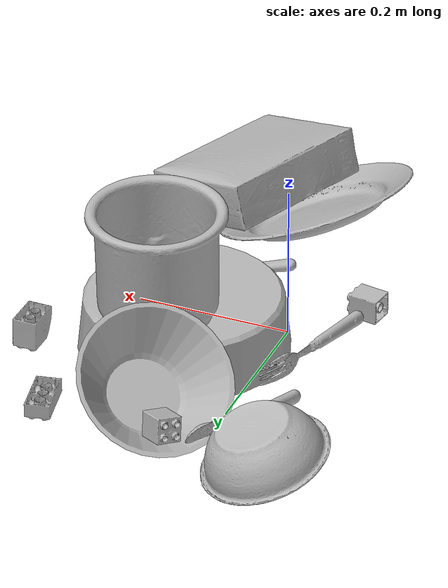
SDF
<sdf version="1.4">
  <world name="default">
    <light name="light1" type="point">
      <pose>0 0 1 0 0 0</pose>
      <diffuse>3 3 3 1</diffuse>
      <specular>3 3 3 1</specular>
    </light>
    <light name="light2" type="point">
      <pose>0 0.5 2 0 0 0</pose>
      <diffuse>1 1 1 1</diffuse>
      <specular>1 1 1 1</specular>
    </light>
    <light name="light3" type="point">
      <pose>0 0.5 2 0 0 0</pose>
      <diffuse>3 3 3 1</diffuse>
      <specular>3 3 3 1</specular>
    </light>
    <scene>
      <ambient>0.7 0.7 0.7</ambient>
    </scene>
    <model name="plate1">
      <link name="link_plate1">
        <collision name="default">
          <geometry>
            <mesh>
              <uri>model://plate/collision_meshes/collision.obj</uri>
              <scale>1.0 1.0 1.0</scale>
            </mesh>
          </geometry>
          <surface>
            <friction>
              <ode>
                <mu>0.5</mu>
                <mu2>0.5</mu2>
              </ode>
            </friction>
          <contact>
        <ode>
            <max_vel>0</max_vel>
            <min_depth>0.0001</min_depth>
            <kp>1e8</kp>
        </ode>
    </contact></surface>
        </collision>
        <visual name="default">
          <geometry>
            <mesh>
              <uri>model://plate/visual_meshes/visual.dae</uri>
              <scale>1.0 1.0 1.0</scale>
            </mesh>
          </geometry>
        </visual>
        <inertial>
          <mass>0.14927330613136292</mass>
          <pose>-0.0006044599576853216 0.00027825793949887156 -0.0010561984963715076 0.0022187657602494516 -0.0032254905015569333 0.45261542380491104</pose>
          <inertia>
            <ixx>0.0006983033</ixx>
            <iyy>0.0006916243</iyy>
            <izz>0.0013657772</izz>
            <ixy>0</ixy>
            <ixz>0</ixz>
            <iyz>0</iyz>
          </inertia>
        </inertial>
      </link>
      <pose>0.04938313737511635 -0.22281210124492645 0.04451582953333855 -0.3092313514897858 -0.27499580895284365 -2.641158717064873</pose>
    </model>
    <model name="plate2">
      <link name="link_plate2">
        <collision name="default">
          <geometry>
            <mesh>
              <uri>model://pan_tefal/collision_meshes/collision.obj</uri>
              <scale>1.0 1.0 1.0</scale>
            </mesh>
          </geometry>
          <surface>
            <friction>
              <ode>
                <mu>0.5</mu>
                <mu2>0.5</mu2>
              </ode>
            </friction>
          <contact>
        <ode>
            <max_vel>0</max_vel>
            <min_depth>0.0001</min_depth>
            <kp>1e8</kp>
        </ode>
    </contact></surface>
        </collision>
        <visual name="default">
          <geometry>
            <mesh>
              <uri>model://pan_tefal/visual_meshes/visual.dae</uri>
              <scale>1.0 1.0 1.0</scale>
            </mesh>
          </geometry>
        </visual>
        <inertial>
          <mass>1.1722657680511475</mass>
          <pose>-0.00018002268916461617 3.2786720112198964e-05 -0.008514933288097382 0.0008190189984333748 -0.0003301390782503885 -0.3318520141268409</pose>
          <inertia>
            <ixx>0.008092094</ixx>
            <iyy>0.008144264</iyy>
            <izz>0.014895983</izz>
            <ixy>0</ixy>
            <ixz>0</ixz>
            <iyz>0</iyz>
          </inertia>
        </inertial>
      </link>
      <pose>0.10783649235963821 0.07447159290313721 0.03782197833061218 3.1415920291075894 6.309524059000851e-07 -2.6767006083984914</pose>
    </model>
    <model name="bowl1">
      <link name="link_bowl1">
        <collision name="default">
          <geometry>
            <mesh>
              <uri>model://bowl_a/collision_meshes/collision.obj</uri>
              <scale>1.0 1.0 1.0</scale>
            </mesh>
          </geometry>
          <surface>
            <friction>
              <ode>
                <mu>0.5</mu>
                <mu2>0.5</mu2>
              </ode>
            </friction>
          <contact>
        <ode>
            <max_vel>0</max_vel>
            <min_depth>0.0001</min_depth>
            <kp>1e8</kp>
        </ode>
    </contact></surface>
        </collision>
        <visual name="default">
          <geometry>
            <mesh>
              <uri>model://bowl_a/visual_meshes/visual.dae</uri>
              <scale>1.0 1.0 1.0</scale>
            </mesh>
          </geometry>
        </visual>
        <inertial>
          <mass>0.2988097667694092</mass>
          <pose>0.0002786743571050465 4.731365334009752e-05 -0.0013765293406322598 -0.0009805349169279892 -0.001093820822183951 -0.19123530183129564</pose>
          <inertia>
            <ixx>0.00085072505</ixx>
            <iyy>0.00085594796</iyy>
            <izz>0.0015130473</izz>
            <ixy>0</ixy>
            <ixz>0</ixz>
            <iyz>0</iyz>
          </inertia>
        </inertial>
      </link>
      <pose>0.07137542217969894 0.2636449933052063 0.059125516563653946 -0.3800547801098368 0.5894848120379677 1.7877605482588537</pose>
    </model>
    <model name="bowl2">
      <link name="link_bowl2">
        <collision name="default">
          <geometry>
            <mesh>
              <uri>model://bowl/collision_meshes/collision.obj</uri>
              <scale>1.0 1.0 1.0</scale>
            </mesh>
          </geometry>
          <surface>
            <friction>
              <ode>
                <mu>0.5</mu>
                <mu2>0.5</mu2>
              </ode>
            </friction>
          <contact>
        <ode>
            <max_vel>0</max_vel>
            <min_depth>0.0001</min_depth>
            <kp>1e8</kp>
        </ode>
    </contact></surface>
        </collision>
        <visual name="default">
          <geometry>
            <mesh>
              <uri>model://bowl/visual_meshes/visual.dae</uri>
              <scale>1.0 1.0 1.0</scale>
            </mesh>
          </geometry>
        </visual>
        <inertial>
          <mass>0.05087859928607941</mass>
          <pose>0.00020445352129172534 -0.001030206447467208 -0.0008042655535973608 -0.015764084400621287 0.014546790156403148 0.7140405806030785</pose>
          <inertia>
            <ixx>0.0001168722</ixx>
            <iyy>0.00011426082</iyy>
            <izz>0.0001966192</izz>
            <ixy>0</ixy>
            <ixz>0</ixz>
            <iyz>0</iyz>
          </inertia>
        </inertial>
      </link>
      <pose>-0.08877906203269958 0.3081308603286743 0.05003783479332924 -2.879165355457474 0.19427500823527022 1.6216708375466864</pose>
    </model>
    <model name="silverware1">
      <link name="link_silverware1">
        <collision name="default">
          <geometry>
            <mesh>
              <uri>model://spoon/collision_meshes/collision.obj</uri>
              <scale>1.0 1.0 1.0</scale>
            </mesh>
          </geometry>
          <surface>
            <friction>
              <ode>
                <mu>0.5</mu>
                <mu2>0.5</mu2>
              </ode>
            </friction>
          <contact>
        <ode>
            <max_vel>0</max_vel>
            <min_depth>0.0001</min_depth>
            <kp>1e8</kp>
        </ode>
    </contact></surface>
        </collision>
        <visual name="default">
          <geometry>
            <mesh>
              <uri>model://spoon/visual_meshes/visual.dae</uri>
              <scale>1.0 1.0 1.0</scale>
            </mesh>
          </geometry>
        </visual>
        <inertial>
          <mass>0.031133336946368217</mass>
          <pose>-0.005526311229914427 -0.001603417214937508 -0.000727165665011853 0.03521724372111935 -0.03906583963771688 0.006150613707428126</pose>
          <inertia>
            <ixx>1.7316867e-06</ixx>
            <iyy>0.00011846133</iyy>
            <izz>0.00011931534</izz>
            <ixy>0</ixy>
            <ixz>0</ixz>
            <iyz>0</iyz>
          </inertia>
        </inertial>
      </link>
      <pose>0.13020002841949463 -0.0886780172586441 0.00838526338338852 0.0067317357223943535 0.026893006720150752 0.5153056528966145</pose>
    </model>
    <model name="box1">
      <link name="link_box1">
        <collision name="default">
          <geometry>
            <mesh>
              <uri>model://cracker_box/collision_meshes/collision.obj</uri>
              <scale>1.0 1.0 1.0</scale>
            </mesh>
          </geometry>
          <surface>
            <friction>
              <ode>
                <mu>0.5</mu>
                <mu2>0.5</mu2>
              </ode>
            </friction>
          <contact>
        <ode>
            <max_vel>0</max_vel>
            <min_depth>0.0001</min_depth>
            <kp>1e8</kp>
        </ode>
    </contact></surface>
        </collision>
        <visual name="default">
          <geometry>
            <mesh>
              <uri>model://cracker_box/visual_meshes/visual.dae</uri>
              <scale>1.0 1.0 1.0</scale>
            </mesh>
          </geometry>
        </visual>
        <inertial>
          <mass>2.900710344314575</mass>
          <pose>0.0009464158210903406 0.00025434247800149024 -0.0017029534792527556 -0.0003162075379034469 -0.011106488669169442 0.0025467947685016775</pose>
          <inertia>
            <ixx>0.007378111</ixx>
            <iyy>0.012182713</iyy>
            <izz>0.01738585</izz>
            <ixy>0</ixy>
            <ixz>0</ixz>
            <iyz>0</iyz>
          </inertia>
        </inertial>
      </link>
      <pose>0.15252183377742767 -0.2671873867511749 0.050124090164899826 -2.8771119737119824 -0.003465113217474537 1.1686142804444626</pose>
    </model>
    <model name="box2">
      <link name="link_box2">
        <collision name="default">
          <geometry>
            <mesh>
              <uri>model://rubiks_cube/collision_meshes/collision.obj</uri>
              <scale>1.0 1.0 1.0</scale>
            </mesh>
          </geometry>
          <surface>
            <friction>
              <ode>
                <mu>0.5</mu>
                <mu2>0.5</mu2>
              </ode>
            </friction>
          <contact>
        <ode>
            <max_vel>0</max_vel>
            <min_depth>0.0001</min_depth>
            <kp>1e8</kp>
        </ode>
    </contact></surface>
        </collision>
        <visual name="default">
          <geometry>
            <mesh>
              <uri>model://rubiks_cube/visual_meshes/visual.dae</uri>
              <scale>1.0 1.0 1.0</scale>
            </mesh>
          </geometry>
        </visual>
        <inertial>
          <mass>0.28670012950897217</mass>
          <pose>2.6721039830590598e-05 5.2569666877388954e-05 -7.264316082000732e-06 -0.05467310906580907 -0.09814045067101686 -0.03445712671449578</pose>
          <inertia>
            <ixx>0.00015842107</ixx>
            <iyy>0.0001576823</iyy>
            <izz>0.00015973386</izz>
            <ixy>0</ixy>
            <ixz>0</ixz>
            <iyz>0</iyz>
          </inertia>
        </inertial>
      </link>
      <pose>-0.06986487656831741 0.3003707230091095 0.028680013492703438 6.0445151994286875e-05 5.454137348815939e-05 3.0718207502660677</pose>
    </model>
    <model name="cup1">
      <link name="link_cup1">
        <collision name="default">
          <geometry>
            <mesh>
              <uri>model://g_cups/collision_meshes/collision.obj</uri>
              <scale>2.0 2.0 2.0</scale>
            </mesh>
          </geometry>
          <surface>
            <friction>
              <ode>
                <mu>0.5</mu>
                <mu2>0.5</mu2>
              </ode>
            </friction>
          <contact>
        <ode>
            <max_vel>0</max_vel>
            <min_depth>0.0001</min_depth>
            <kp>1e8</kp>
        </ode>
    </contact></surface>
        </collision>
        <visual name="default">
          <geometry>
            <mesh>
              <uri>model://g_cups/visual_meshes/visual.dae</uri>
              <scale>2.0 2.0 2.0</scale>
            </mesh>
          </geometry>
        </visual>
        <inertial>
          <mass>0.7979594469070435</mass>
          <pose>-0.001589252962730825 -8.413367322646081e-05 -0.004265873227268457 -0.2138242542550812 -0.3141046905663657 0.3112069095441374</pose>
          <inertia>
            <ixx>0.0037255902</ixx>
            <iyy>0.003712916</iyy>
            <izz>0.0038590694</izz>
            <ixy>0</ixy>
            <ixz>0</ixz>
            <iyz>0</iyz>
          </inertia>
        </inertial>
      </link>
      <pose>0.11704069375991821 0.13370461761951447 0.15055415034294128 -0.011403864213305808 0.006246602022778476 0.508315147146298</pose>
    </model>
    <model name="silverware2">
      <link name="link_silverware2">
        <collision name="default">
          <geometry>
            <mesh>
              <uri>model://fork/collision_meshes/collision.obj</uri>
              <scale>1.0 1.0 1.0</scale>
            </mesh>
          </geometry>
          <surface>
            <friction>
              <ode>
                <mu>0.5</mu>
                <mu2>0.5</mu2>
              </ode>
            </friction>
          <contact>
        <ode>
            <max_vel>0</max_vel>
            <min_depth>0.0001</min_depth>
            <kp>1e8</kp>
        </ode>
    </contact></surface>
        </collision>
        <visual name="default">
          <geometry>
            <mesh>
              <uri>model://fork/visual_meshes/visual.dae</uri>
              <scale>1.0 1.0 1.0</scale>
            </mesh>
          </geometry>
        </visual>
        <inertial>
          <mass>0.026295984163880348</mass>
          <pose>-0.02957003563642502 0.0004658822435885668 0.0003218861238565296 -0.013551585765180826 -0.010977835012843383 0.014453895551669751</pose>
          <inertia>
            <ixx>9.2182285e-07</ixx>
            <iyy>6.865125e-05</iyy>
            <izz>6.9063564e-05</izz>
            <ixy>0</ixy>
            <ixz>0</ixz>
            <iyz>0</iyz>
          </inertia>
        </inertial>
      </link>
      <pose>-0.04780963435769081 0.036109328269958496 0.011274297721683979 1.8276739559153947 -0.023580496408812386 1.2980743437520372</pose>
    </model>
    <model name="silverware3">
      <link name="link_silverware3">
        <collision name="default">
          <geometry>
            <mesh>
              <uri>model://knife/collision_meshes/collision.obj</uri>
              <scale>1.0 1.0 1.0</scale>
            </mesh>
          </geometry>
          <surface>
            <friction>
              <ode>
                <mu>0.5</mu>
                <mu2>0.5</mu2>
              </ode>
            </friction>
          <contact>
        <ode>
            <max_vel>0</max_vel>
            <min_depth>0.0001</min_depth>
            <kp>1e8</kp>
        </ode>
    </contact></surface>
        </collision>
        <visual name="default">
          <geometry>
            <mesh>
              <uri>model://knife/visual_meshes/visual.dae</uri>
              <scale>1.0 1.0 1.0</scale>
            </mesh>
          </geometry>
        </visual>
        <inertial>
          <mass>0.018686598166823387</mass>
          <pose>-0.023785265162587166 0.001527512213215232 5.06201722600963e-05 0.0730586728597059 0.01724841756758314 -0.007409823953988089</pose>
          <inertia>
            <ixx>5.3040145e-07</ixx>
            <iyy>7.1790884e-05</iyy>
            <izz>7.1961695e-05</izz>
            <ixy>0</ixy>
            <ixz>0</ixz>
            <iyz>0</iyz>
          </inertia>
        </inertial>
      </link>
      <pose>-0.03835778683423996 0.23643368482589722 0.030465979129076004 -1.6307210731993447 -0.21062064913342227 1.276519562344651</pose>
    </model>
    <model name="toy1">
      <link name="link_toy1">
        <collision name="default">
          <geometry>
            <mesh>
              <uri>model://d_lego_duplo/collision_meshes/collision.obj</uri>
              <scale>1.0 1.0 1.0</scale>
            </mesh>
          </geometry>
          <surface>
            <friction>
              <ode>
                <mu>0.5</mu>
                <mu2>0.5</mu2>
              </ode>
            </friction>
          <contact>
        <ode>
            <max_vel>0</max_vel>
            <min_depth>0.0001</min_depth>
            <kp>1e8</kp>
        </ode>
    </contact></surface>
        </collision>
        <visual name="default">
          <geometry>
            <mesh>
              <uri>model://d_lego_duplo/visual_meshes/visual.dae</uri>
              <scale>1.0 1.0 1.0</scale>
            </mesh>
          </geometry>
        </visual>
        <inertial>
          <mass>0.057973701506853104</mass>
          <pose>0.002830564510077238 0.0001636612432776019 0.000858980929479003 0.08010949801199577 -0.38355255965562274 0.0010296774355632512</pose>
          <inertia>
            <ixx>1.1222855e-05</ixx>
            <iyy>1.5928275e-05</iyy>
            <izz>1.5360585e-05</izz>
            <ixy>0</ixy>
            <ixz>0</ixz>
            <iyz>0</iyz>
          </inertia>
        </inertial>
      </link>
      <pose>0.2829102575778961 0.14356166124343872 0.02165830507874489 3.129831126300617 -0.018638660299693813 1.572011801512184</pose>
    </model>
    <model name="toy2">
      <link name="link_toy2">
        <collision name="default">
          <geometry>
            <mesh>
              <uri>model://c_lego_duplo/collision_meshes/collision.obj</uri>
              <scale>1.0 1.0 1.0</scale>
            </mesh>
          </geometry>
          <surface>
            <friction>
              <ode>
                <mu>0.5</mu>
                <mu2>0.5</mu2>
              </ode>
            </friction>
          <contact>
        <ode>
            <max_vel>0</max_vel>
            <min_depth>0.0001</min_depth>
            <kp>1e8</kp>
        </ode>
    </contact></surface>
        </collision>
        <visual name="default">
          <geometry>
            <mesh>
              <uri>model://c_lego_duplo/visual_meshes/visual.dae</uri>
              <scale>1.0 1.0 1.0</scale>
            </mesh>
          </geometry>
        </visual>
        <inertial>
          <mass>0.03295557200908661</mass>
          <pose>0.00031645927811041474 0.0001946454867720604 0.0010453149443492293 -0.011520797378012098 0.005900082234647494 0.03110035414112205</pose>
          <inertia>
            <ixx>1.2681916e-05</ixx>
            <iyy>4.0510618e-06</iyy>
            <izz>1.4820123e-05</izz>
            <ixy>0</ixy>
            <ixz>0</ixz>
            <iyz>0</iyz>
          </inertia>
        </inertial>
      </link>
      <pose>0.20909877121448517 0.2709633708000183 0.011916267685592175 -3.1352258168700198 -0.0006829276172169071 0.22536493474170002</pose>
    </model>
    <model name="toy3">
      <link name="link_toy3">
        <collision name="default">
          <geometry>
            <mesh>
              <uri>model://foam_brick/collision_meshes/collision.obj</uri>
              <scale>1.0 1.0 1.0</scale>
            </mesh>
          </geometry>
          <surface>
            <friction>
              <ode>
                <mu>0.5</mu>
                <mu2>0.5</mu2>
              </ode>
            </friction>
          <contact>
        <ode>
            <max_vel>0</max_vel>
            <min_depth>0.0001</min_depth>
            <kp>1e8</kp>
        </ode>
    </contact></surface>
        </collision>
        <visual name="default">
          <geometry>
            <mesh>
              <uri>model://foam_brick/visual_meshes/visual.dae</uri>
              <scale>1.0 1.0 1.0</scale>
            </mesh>
          </geometry>
        </visual>
        <inertial>
          <mass>0.2026180773973465</mass>
          <pose>-0.00025224717683158815 0.0003458433202467859 -0.0002532101352699101 -0.2940154265809752 0.017274439844268085 -0.0007449877964386924</pose>
          <inertia>
            <ixx>8.850737e-05</ixx>
            <iyy>0.00014130655</iyy>
            <izz>0.00014310238</izz>
            <ixy>0</ixy>
            <ixz>0</ixz>
            <iyz>0</iyz>
          </inertia>
        </inertial>
      </link>
      <pose>0.24809719622135162 -0.12557882070541382 0.02591068483889103 1.5828207033314357 -0.0003757174196804057 2.5466521753506752</pose>
    </model>
    <model name="toy4">
      <link name="link_toy4">
        <collision name="default">
          <geometry>
            <mesh>
              <uri>model://f_lego_duplo/collision_meshes/collision.obj</uri>
              <scale>1.0 1.0 1.0</scale>
            </mesh>
          </geometry>
          <surface>
            <friction>
              <ode>
                <mu>0.5</mu>
                <mu2>0.5</mu2>
              </ode>
            </friction>
          <contact>
        <ode>
            <max_vel>0</max_vel>
            <min_depth>0.0001</min_depth>
            <kp>1e8</kp>
        </ode>
    </contact></surface>
        </collision>
        <visual name="default">
          <geometry>
            <mesh>
              <uri>model://f_lego_duplo/visual_meshes/visual.dae</uri>
              <scale>1.0 1.0 1.0</scale>
            </mesh>
          </geometry>
        </visual>
        <inertial>
          <mass>0.026114314794540405</mass>
          <pose>2.3694528863416053e-05 0.00013393153494689614 0.001883787801489234 0.02983849389432246 -0.014425286210530337 -0.675657453158783</pose>
          <inertia>
            <ixx>5.5180976e-06</ixx>
            <iyy>5.5672576e-06</iyy>
            <izz>4.7899434e-06</izz>
            <ixy>0</ixy>
            <ixz>0</ixz>
            <iyz>0</iyz>
          </inertia>
        </inertial>
      </link>
      <pose>-0.07611013948917389 -0.07572457939386368 0.016203001141548157 1.5636100182864245 1.570751724189908 1.4102734818388496</pose>
    </model>
    <model name="toy5">
      <link name="link_toy5">
        <collision name="default">
          <geometry>
            <mesh>
              <uri>model://b_lego_duplo/collision_meshes/collision.obj</uri>
              <scale>1.0 1.0 1.0</scale>
            </mesh>
          </geometry>
          <surface>
            <friction>
              <ode>
                <mu>0.5</mu>
                <mu2>0.5</mu2>
              </ode>
            </friction>
          <contact>
        <ode>
            <max_vel>0</max_vel>
            <min_depth>0.0001</min_depth>
            <kp>1e8</kp>
        </ode>
    </contact></surface>
        </collision>
        <visual name="default">
          <geometry>
            <mesh>
              <uri>model://b_lego_duplo/visual_meshes/visual.dae</uri>
              <scale>1.0 1.0 1.0</scale>
            </mesh>
          </geometry>
        </visual>
        <inertial>
          <mass>0.0471348837018013</mass>
          <pose>-0.00011053068010369316 -9.152583515970036e-06 0.0019294292433187366 -0.037494549971735465 -0.026354388193955382 0.45188781154390406</pose>
          <inertia>
            <ixx>9.646508e-06</ixx>
            <iyy>9.711356e-06</iyy>
            <izz>8.594722e-06</izz>
            <ixy>0</ixy>
            <ixz>0</ixz>
            <iyz>0</iyz>
          </inertia>
        </inertial>
      </link>
      <pose>0.03752618283033371 0.30222398042678833 0.03629001975059509 0.6423036014168004 -1.298085437245937 -1.2949977033579174</pose>
    </model>
  <physics type="ode">
      <max_contacts>50</max_contacts>
      <ode>
        <solver>
          <type>quick</type>
          <iters>75</iters>
        </solver>
        <constraints>
          <contact_max_correcting_vel>0</contact_max_correcting_vel>
          <contact_surface_layer>0</contact_surface_layer>
        </constraints>
      </ode>
    </physics></world>
</sdf>
